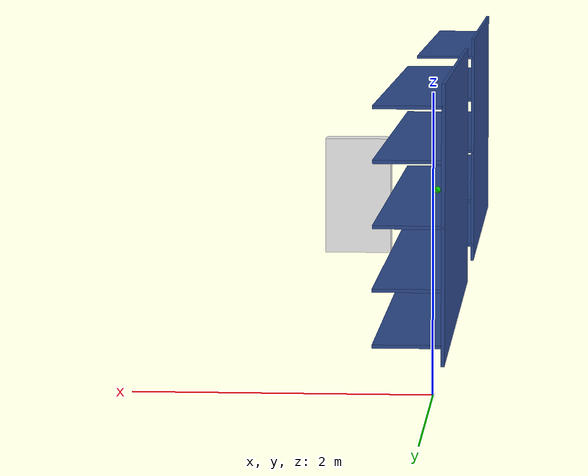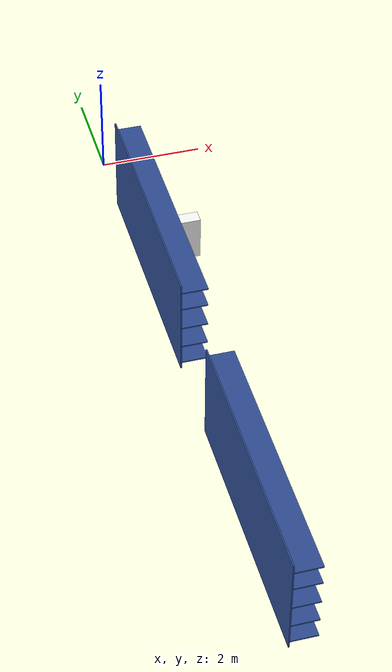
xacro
<?xml version="1.0" ?>
<robot xmlns:xacro="http://www.ros.org/wiki/xacro" name="rfhHandheld">

<property name="M_PI" value="3.14159"/>
<property name="SCALE" value="0.0254"/>
<property name="base_x" value="0.55" />
<property name="base_y" value="0.55" />
<property name="base_radius_visual" value="0.2025" />
<property name="base_radius_collision" value="0.25" />  <!-- used to be 0.35 -->

<material name="Green">
      <color rgba="0.0 0.8 0.0 1.0"/>
</material>
<material name="Red">
      <color rgba="0.8 0.0 0.0 1.0"/>
</material>
<material name="White">
      <color rgba="1.0 1.0 1.0 1.0"/>
</material>
<material name="Blue">
      <color rgba="0.0 0.0 0.8 1.0"/>
</material>
<material name="Black">
      <color rgba="0.0 0.0 0.0 1.0"/>
</material>
<material name="Grey">
      <color rgba="0.25 0.25 0.25 1.0"/>
</material>
<material name="Silver">
      <color rgba="0.38 0.38 0.38 1.0"/>
</material>
<material name="Sandal">
      <color rgba="0.84 0.87 0.50 1.0"/>
</material>
<material name="LBlue">
      <color rgba="0.18 0.30 0.58 1.0"/>
</material>
<material name="Yellow">
      <color rgba="1 1 0 1.0"/>
</material>

<link name="odom">
    <inertial>
        <mass value="0.00001" />
        <origin xyz="0.0 0.0 0.0" />
        <inertia ixx="1.0" ixy="0.0" ixz="0.0"
                    iyy="1.0" iyz="0.0"
                    izz="1.0" />
    </inertial>

    <visual>
        <material name="Red" />
        <!--origin xyz=" 0 0 0 " rpy="0 0 0" /-->
        <geometry>
            <box size="0.025 0.025 0.025" />
        </geometry>
    </visual>
</link>
<joint name="rack0framejoin_global_frame" type="fixed">
    <origin xyz="-0.0127 -10.2108 0.9906" rpy="0 0 0" />
    <parent link="odom" />
    <child link="rack0frame" />
</joint>

<link name="rack0frame">
    <inertial>
        <mass value="0.00001" />
        <origin xyz="0 0 0" />
        <inertia ixx="1.0" ixy="0.0" ixz="0.0"
                    iyy="1.0" iyz="0.0"
                    izz="1.0" />
    </inertial>

    <visual>
        <material name="LBlue" />
        <!--origin xyz=" 0 0 0 " rpy="0 0 0" /-->
        <geometry>
            <box size="0.0254 4.8768 1.9812" />
        </geometry>
    </visual>
</link>
<joint name="level0rack0framejoin_rack0frame" type="fixed">
    <origin xyz="0.24765 0.0 -0.8509" rpy="0 0 0" />
    <parent link="rack0frame" />
    <child link="level0rack0frame" />
</joint>

<link name="level0rack0frame">
    <inertial>
        <mass value="0.00001" />
        <origin xyz="0 0 0" />
        <inertia ixx="1.0" ixy="0.0" ixz="0.0"
                    iyy="1.0" iyz="0.0"
                    izz="1.0" />
    </inertial>

    <visual>
        <material name="LBlue" />
        <!--origin xyz=" 0 0 0 " rpy="0 0 0" /-->
        <geometry>
            <box size="0.4953 4.8768 0.0254" />
        </geometry>
    </visual>
</link>
<joint name="level1rack0framejoin_rack0frame" type="fixed">
    <origin xyz="0.24765 0.0 -0.4572" rpy="0 0 0" />
    <parent link="rack0frame" />
    <child link="level1rack0frame" />
</joint>

<link name="level1rack0frame">
    <inertial>
        <mass value="0.00001" />
        <origin xyz="0 0 0" />
        <inertia ixx="1.0" ixy="0.0" ixz="0.0"
                    iyy="1.0" iyz="0.0"
                    izz="1.0" />
    </inertial>

    <visual>
        <material name="LBlue" />
        <!--origin xyz=" 0 0 0 " rpy="0 0 0" /-->
        <geometry>
            <box size="0.4953 4.8768 0.0254" />
        </geometry>
    </visual>
</link>
<joint name="level2rack0framejoin_rack0frame" type="fixed">
    <origin xyz="0.24765 0.0 -0.0127" rpy="0 0 0" />
    <parent link="rack0frame" />
    <child link="level2rack0frame" />
</joint>

<link name="level2rack0frame">
    <inertial>
        <mass value="0.00001" />
        <origin xyz="0 0 0" />
        <inertia ixx="1.0" ixy="0.0" ixz="0.0"
                    iyy="1.0" iyz="0.0"
                    izz="1.0" />
    </inertial>

    <visual>
        <material name="LBlue" />
        <!--origin xyz=" 0 0 0 " rpy="0 0 0" /-->
        <geometry>
            <box size="0.4953 4.8768 0.0254" />
        </geometry>
    </visual>
</link>
<joint name="Bar-code2join_level2rack0frame" type="fixed">
    <origin xyz="0.49765 6.5024 0.0" rpy="0 0 0" />
    <parent link="level2rack0frame" />
    <child link="Bar-code2" />
</joint>

<link name="Bar-code2">
    <inertial>
        <mass value="0.00001" />
        <origin xyz="0 0 0" />
        <inertia ixx="1.0" ixy="0.0" ixz="0.0"
                    iyy="1.0" iyz="0.0"
                    izz="1.0" />
    </inertial>

    <visual>
        <material name="White" />
        <!--origin xyz=" 0 0 0 " rpy="0 0 0" /-->
        <geometry>
            <box size="0.5 0.25 0.875" />
        </geometry>
    </visual>
</link>
<joint name="level3rack0framejoin_rack0frame" type="fixed">
    <origin xyz="0.24765 0.0 0.4445" rpy="0 0 0" />
    <parent link="rack0frame" />
    <child link="level3rack0frame" />
</joint>

<link name="level3rack0frame">
    <inertial>
        <mass value="0.00001" />
        <origin xyz="0 0 0" />
        <inertia ixx="1.0" ixy="0.0" ixz="0.0"
                    iyy="1.0" iyz="0.0"
                    izz="1.0" />
    </inertial>

    <visual>
        <material name="LBlue" />
        <!--origin xyz=" 0 0 0 " rpy="0 0 0" /-->
        <geometry>
            <box size="0.4953 4.8768 0.0254" />
        </geometry>
    </visual>
</link>
<joint name="level4rack0framejoin_rack0frame" type="fixed">
    <origin xyz="0.24765 0.0 0.8255" rpy="0 0 0" />
    <parent link="rack0frame" />
    <child link="level4rack0frame" />
</joint>

<link name="level4rack0frame">
    <inertial>
        <mass value="0.00001" />
        <origin xyz="0 0 0" />
        <inertia ixx="1.0" ixy="0.0" ixz="0.0"
                    iyy="1.0" iyz="0.0"
                    izz="1.0" />
    </inertial>

    <visual>
        <material name="LBlue" />
        <!--origin xyz=" 0 0 0 " rpy="0 0 0" /-->
        <geometry>
            <box size="0.4953 4.8768 0.0254" />
        </geometry>
    </visual>
</link>
<joint name="rack1framejoin_global_frame" type="fixed">
    <origin xyz="-0.0127 -3.7084 0.9906" rpy="0 0 0" />
    <parent link="odom" />
    <child link="rack1frame" />
</joint>

<link name="rack1frame">
    <inertial>
        <mass value="0.00001" />
        <origin xyz="0 0 0" />
        <inertia ixx="1.0" ixy="0.0" ixz="0.0"
                    iyy="1.0" iyz="0.0"
                    izz="1.0" />
    </inertial>

    <visual>
        <material name="LBlue" />
        <!--origin xyz=" 0 0 0 " rpy="0 0 0" /-->
        <geometry>
            <box size="0.0254 4.8768 1.9812" />
        </geometry>
    </visual>
</link>
<joint name="level0rack1framejoin_rack1frame" type="fixed">
    <origin xyz="0.24765 0.0 -0.8509" rpy="0 0 0" />
    <parent link="rack1frame" />
    <child link="level0rack1frame" />
</joint>

<link name="level0rack1frame">
    <inertial>
        <mass value="0.00001" />
        <origin xyz="0 0 0" />
        <inertia ixx="1.0" ixy="0.0" ixz="0.0"
                    iyy="1.0" iyz="0.0"
                    izz="1.0" />
    </inertial>

    <visual>
        <material name="LBlue" />
        <!--origin xyz=" 0 0 0 " rpy="0 0 0" /-->
        <geometry>
            <box size="0.4953 4.8768 0.0254" />
        </geometry>
    </visual>
</link>
<joint name="level1rack1framejoin_rack1frame" type="fixed">
    <origin xyz="0.24765 0.0 -0.4572" rpy="0 0 0" />
    <parent link="rack1frame" />
    <child link="level1rack1frame" />
</joint>

<link name="level1rack1frame">
    <inertial>
        <mass value="0.00001" />
        <origin xyz="0 0 0" />
        <inertia ixx="1.0" ixy="0.0" ixz="0.0"
                    iyy="1.0" iyz="0.0"
                    izz="1.0" />
    </inertial>

    <visual>
        <material name="LBlue" />
        <!--origin xyz=" 0 0 0 " rpy="0 0 0" /-->
        <geometry>
            <box size="0.4953 4.8768 0.0254" />
        </geometry>
    </visual>
</link>
<joint name="level2rack1framejoin_rack1frame" type="fixed">
    <origin xyz="0.24765 0.0 -0.0127" rpy="0 0 0" />
    <parent link="rack1frame" />
    <child link="level2rack1frame" />
</joint>

<link name="level2rack1frame">
    <inertial>
        <mass value="0.00001" />
        <origin xyz="0 0 0" />
        <inertia ixx="1.0" ixy="0.0" ixz="0.0"
                    iyy="1.0" iyz="0.0"
                    izz="1.0" />
    </inertial>

    <visual>
        <material name="LBlue" />
        <!--origin xyz=" 0 0 0 " rpy="0 0 0" /-->
        <geometry>
            <box size="0.4953 4.8768 0.0254" />
        </geometry>
    </visual>
</link>
<joint name="Bar-code1join_level2rack1frame" type="fixed">
    <origin xyz="0.49765 0.0 0.0" rpy="0 0 0" />
    <parent link="level2rack1frame" />
    <child link="Bar-code1" />
</joint>

<link name="Bar-code1">
    <inertial>
        <mass value="0.00001" />
        <origin xyz="0 0 0" />
        <inertia ixx="1.0" ixy="0.0" ixz="0.0"
                    iyy="1.0" iyz="0.0"
                    izz="1.0" />
    </inertial>

    <visual>
        <material name="White" />
        <!--origin xyz=" 0 0 0 " rpy="0 0 0" /-->
        <geometry>
            <box size="0.5 0.25 0.875" />
        </geometry>
    </visual>
</link>
<joint name="level3rack1framejoin_rack1frame" type="fixed">
    <origin xyz="0.24765 0.0 0.4445" rpy="0 0 0" />
    <parent link="rack1frame" />
    <child link="level3rack1frame" />
</joint>

<link name="level3rack1frame">
    <inertial>
        <mass value="0.00001" />
        <origin xyz="0 0 0" />
        <inertia ixx="1.0" ixy="0.0" ixz="0.0"
                    iyy="1.0" iyz="0.0"
                    izz="1.0" />
    </inertial>

    <visual>
        <material name="LBlue" />
        <!--origin xyz=" 0 0 0 " rpy="0 0 0" /-->
        <geometry>
            <box size="0.4953 4.8768 0.0254" />
        </geometry>
    </visual>
</link>
<joint name="level4rack1framejoin_rack1frame" type="fixed">
    <origin xyz="0.24765 0.0 0.8255" rpy="0 0 0" />
    <parent link="rack1frame" />
    <child link="level4rack1frame" />
</joint>

<link name="level4rack1frame">
    <inertial>
        <mass value="0.00001" />
        <origin xyz="0 0 0" />
        <inertia ixx="1.0" ixy="0.0" ixz="0.0"
                    iyy="1.0" iyz="0.0"
                    izz="1.0" />
    </inertial>

    <visual>
        <material name="LBlue" />
        <!--origin xyz=" 0 0 0 " rpy="0 0 0" /-->
        <geometry>
            <box size="0.4953 4.8768 0.0254" />
        </geometry>
    </visual>
</link>
<joint name="Item1join_global_frame" type="fixed">
    <origin xyz="0.127 -3.7084 1.016" rpy="0 0 0" />
    <parent link="odom" />
    <child link="Item1" />
</joint>

<link name="Item1">
    <inertial>
        <mass value="0.00001" />
        <origin xyz="0 0 0" />
        <inertia ixx="1.0" ixy="0.0" ixz="0.0"
                    iyy="1.0" iyz="0.0"
                    izz="1.0" />
    </inertial>

    <visual>
        <material name="Green" />
        <!--origin xyz=" 0 0 0 " rpy="0 0 0" /-->
        <geometry>
            <sphere radius="0.0254"/>
        </geometry>
    </visual>
</link>
</robot>
